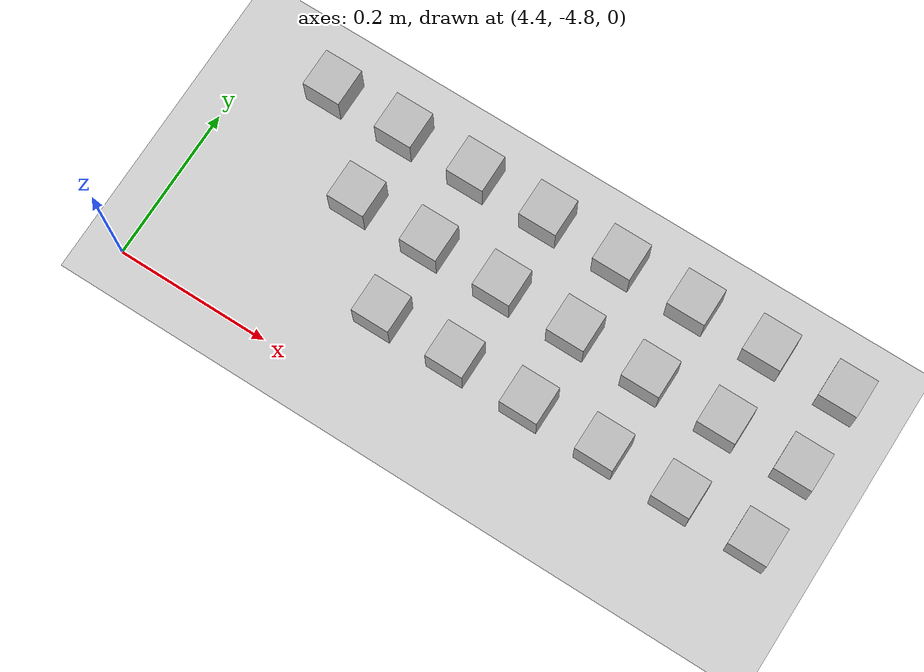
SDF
<sdf version="1.6">
 <world name="default">
  <model name="ground_plane">
   <static>1</static>
   <link name="link">
    <collision name="collision">
     <geometry><plane><normal>0 0 1</normal><size>100 100</size></plane></geometry>
     <surface><friction><ode><mu>100</mu><mu2>50</mu2></ode></friction></surface>
    </collision>
    <visual name="visual">
     <cast_shadows>0</cast_shadows>
     <geometry><plane><normal>0 0 1</normal><size>100 100</size></plane></geometry>
     <material>
      <script><uri>file://media/materials/scripts/gazebo.material</uri><name>Gazebo/Grey</name></script>
     </material>
    </visual>
   </link>
  </model>
  <model name="at106">
   <static>0</static>
   <link name="link">
    <inertial>
     <mass>0.01</mass>
     <inertia><ixx>4e-05</ixx><ixy>0</ixy><ixz>0</ixz><iyy>4e-05</iyy><iyz>0</iyz><izz>4e-05</izz></inertia>
    </inertial>
    <visual name="visual">
     <geometry><box><size>0.05 0.05 0.05</size></box></geometry>
     <material>
      <script>
       <uri>model://at0/materials/scripts</uri>
       <uri>model://at0/materials/textures</uri>
       <name>at0/Diffuse</name>
      </script>
     </material>
    </visual>
    <collision name="collision">
     <geometry><box><size>0.05 0.05 0.05</size></box></geometry>
     <surface><friction><ode><mu>0.8</mu><mu2>0.7</mu2></ode></friction></surface>
    </collision>
   </link>
   <pose>4.7 -4.7 0.025 0 -0 0</pose>
  </model>
  <model name="at107">
   <static>0</static>
   <link name="link">
    <inertial>
     <mass>0.01</mass>
     <inertia><ixx>4e-05</ixx><ixy>0</ixy><ixz>0</ixz><iyy>4e-05</iyy><iyz>0</iyz><izz>4e-05</izz></inertia>
    </inertial>
    <visual name="visual">
     <geometry><box><size>0.05 0.05 0.05</size></box></geometry>
     <material>
      <script>
       <uri>model://at0/materials/scripts</uri>
       <uri>model://at0/materials/textures</uri>
       <name>at0/Diffuse</name>
      </script>
     </material>
    </visual>
    <collision name="collision">
     <geometry><box><size>0.05 0.05 0.05</size></box></geometry>
     <surface><friction><ode><mu>0.8</mu><mu2>0.7</mu2></ode></friction></surface>
    </collision>
   </link>
   <pose>4.8 -4.7 0.025 0 -0 0</pose>
  </model>
  <model name="at108">
   <static>0</static>
   <link name="link">
    <inertial>
     <mass>0.01</mass>
     <inertia><ixx>4e-05</ixx><ixy>0</ixy><ixz>0</ixz><iyy>4e-05</iyy><iyz>0</iyz><izz>4e-05</izz></inertia>
    </inertial>
    <visual name="visual">
     <geometry><box><size>0.05 0.05 0.05</size></box></geometry>
     <material>
      <script>
       <uri>model://at0/materials/scripts</uri>
       <uri>model://at0/materials/textures</uri>
       <name>at0/Diffuse</name>
      </script>
     </material>
    </visual>
    <collision name="collision">
     <geometry><box><size>0.05 0.05 0.05</size></box></geometry>
     <surface><friction><ode><mu>0.8</mu><mu2>0.7</mu2></ode></friction></surface>
    </collision>
   </link>
   <pose>4.9 -4.7 0.025 0 -0 0</pose>
  </model>
  <model name="at109">
   <static>0</static>
   <link name="link">
    <inertial>
     <mass>0.01</mass>
     <inertia><ixx>4e-05</ixx><ixy>0</ixy><ixz>0</ixz><iyy>4e-05</iyy><iyz>0</iyz><izz>4e-05</izz></inertia>
    </inertial>
    <visual name="visual">
     <geometry><box><size>0.05 0.05 0.05</size></box></geometry>
     <material>
      <script>
       <uri>model://at0/materials/scripts</uri>
       <uri>model://at0/materials/textures</uri>
       <name>at0/Diffuse</name>
      </script>
     </material>
    </visual>
    <collision name="collision">
     <geometry><box><size>0.05 0.05 0.05</size></box></geometry>
     <surface><friction><ode><mu>0.8</mu><mu2>0.7</mu2></ode></friction></surface>
    </collision>
   </link>
   <pose>5.0 -4.7 0.025 0 -0 0</pose>
  </model>
  <model name="at110">
   <static>0</static>
   <link name="link">
    <inertial>
     <mass>0.01</mass>
     <inertia><ixx>4e-05</ixx><ixy>0</ixy><ixz>0</ixz><iyy>4e-05</iyy><iyz>0</iyz><izz>4e-05</izz></inertia>
    </inertial>
    <visual name="visual">
     <geometry><box><size>0.05 0.05 0.05</size></box></geometry>
     <material>
      <script>
       <uri>model://at0/materials/scripts</uri>
       <uri>model://at0/materials/textures</uri>
       <name>at0/Diffuse</name>
      </script>
     </material>
    </visual>
    <collision name="collision">
     <geometry><box><size>0.05 0.05 0.05</size></box></geometry>
     <surface><friction><ode><mu>0.8</mu><mu2>0.7</mu2></ode></friction></surface>
    </collision>
   </link>
   <pose>5.1 -4.7 0.025 0 -0 0</pose>
  </model>
  <model name="at111">
   <static>0</static>
   <link name="link">
    <inertial>
     <mass>0.01</mass>
     <inertia><ixx>4e-05</ixx><ixy>0</ixy><ixz>0</ixz><iyy>4e-05</iyy><iyz>0</iyz><izz>4e-05</izz></inertia>
    </inertial>
    <visual name="visual">
     <geometry><box><size>0.05 0.05 0.05</size></box></geometry>
     <material>
      <script>
       <uri>model://at0/materials/scripts</uri>
       <uri>model://at0/materials/textures</uri>
       <name>at0/Diffuse</name>
      </script>
     </material>
    </visual>
    <collision name="collision">
     <geometry><box><size>0.05 0.05 0.05</size></box></geometry>
     <surface><friction><ode><mu>0.8</mu><mu2>0.7</mu2></ode></friction></surface>
    </collision>
   </link>
   <pose>5.2 -4.7 0.025 0 -0 0</pose>
  </model>
  <model name="at113">
   <static>0</static>
   <link name="link">
    <inertial>
     <mass>0.01</mass>
     <inertia><ixx>4e-05</ixx><ixy>0</ixy><ixz>0</ixz><iyy>4e-05</iyy><iyz>0</iyz><izz>4e-05</izz></inertia>
    </inertial>
    <visual name="visual">
     <geometry><box><size>0.05 0.05 0.05</size></box></geometry>
     <material>
      <script>
       <uri>model://at0/materials/scripts</uri>
       <uri>model://at0/materials/textures</uri>
       <name>at0/Diffuse</name>
      </script>
     </material>
    </visual>
    <collision name="collision">
     <geometry><box><size>0.05 0.05 0.05</size></box></geometry>
     <surface><friction><ode><mu>0.8</mu><mu2>0.7</mu2></ode></friction></surface>
    </collision>
   </link>
   <pose>4.6 -4.6 0.025 0 -0 0</pose>
  </model>
  <model name="at114">
   <static>0</static>
   <link name="link">
    <inertial>
     <mass>0.01</mass>
     <inertia><ixx>4e-05</ixx><ixy>0</ixy><ixz>0</ixz><iyy>4e-05</iyy><iyz>0</iyz><izz>4e-05</izz></inertia>
    </inertial>
    <visual name="visual">
     <geometry><box><size>0.05 0.05 0.05</size></box></geometry>
     <material>
      <script>
       <uri>model://at0/materials/scripts</uri>
       <uri>model://at0/materials/textures</uri>
       <name>at0/Diffuse</name>
      </script>
     </material>
    </visual>
    <collision name="collision">
     <geometry><box><size>0.05 0.05 0.05</size></box></geometry>
     <surface><friction><ode><mu>0.8</mu><mu2>0.7</mu2></ode></friction></surface>
    </collision>
   </link>
   <pose>4.7 -4.6 0.025 0 -0 0</pose>
  </model>
  <model name="at115">
   <static>0</static>
   <link name="link">
    <inertial>
     <mass>0.01</mass>
     <inertia><ixx>4e-05</ixx><ixy>0</ixy><ixz>0</ixz><iyy>4e-05</iyy><iyz>0</iyz><izz>4e-05</izz></inertia>
    </inertial>
    <visual name="visual">
     <geometry><box><size>0.05 0.05 0.05</size></box></geometry>
     <material>
      <script>
       <uri>model://at0/materials/scripts</uri>
       <uri>model://at0/materials/textures</uri>
       <name>at0/Diffuse</name>
      </script>
     </material>
    </visual>
    <collision name="collision">
     <geometry><box><size>0.05 0.05 0.05</size></box></geometry>
     <surface><friction><ode><mu>0.8</mu><mu2>0.7</mu2></ode></friction></surface>
    </collision>
   </link>
   <pose>4.8 -4.6 0.025 0 -0 0</pose>
  </model>
  <model name="at116">
   <static>0</static>
   <link name="link">
    <inertial>
     <mass>0.01</mass>
     <inertia><ixx>4e-05</ixx><ixy>0</ixy><ixz>0</ixz><iyy>4e-05</iyy><iyz>0</iyz><izz>4e-05</izz></inertia>
    </inertial>
    <visual name="visual">
     <geometry><box><size>0.05 0.05 0.05</size></box></geometry>
     <material>
      <script>
       <uri>model://at0/materials/scripts</uri>
       <uri>model://at0/materials/textures</uri>
       <name>at0/Diffuse</name>
      </script>
     </material>
    </visual>
    <collision name="collision">
     <geometry><box><size>0.05 0.05 0.05</size></box></geometry>
     <surface><friction><ode><mu>0.8</mu><mu2>0.7</mu2></ode></friction></surface>
    </collision>
   </link>
   <pose>4.9 -4.6 0.025 0 -0 0</pose>
  </model>
  <model name="at117">
   <static>0</static>
   <link name="link">
    <inertial>
     <mass>0.01</mass>
     <inertia><ixx>4e-05</ixx><ixy>0</ixy><ixz>0</ixz><iyy>4e-05</iyy><iyz>0</iyz><izz>4e-05</izz></inertia>
    </inertial>
    <visual name="visual">
     <geometry><box><size>0.05 0.05 0.05</size></box></geometry>
     <material>
      <script>
       <uri>model://at0/materials/scripts</uri>
       <uri>model://at0/materials/textures</uri>
       <name>at0/Diffuse</name>
      </script>
     </material>
    </visual>
    <collision name="collision">
     <geometry><box><size>0.05 0.05 0.05</size></box></geometry>
     <surface><friction><ode><mu>0.8</mu><mu2>0.7</mu2></ode></friction></surface>
    </collision>
   </link>
   <pose>5.0 -4.6 0.025 0 -0 0</pose>
  </model>
  <model name="at118">
   <static>0</static>
   <link name="link">
    <inertial>
     <mass>0.01</mass>
     <inertia><ixx>4e-05</ixx><ixy>0</ixy><ixz>0</ixz><iyy>4e-05</iyy><iyz>0</iyz><izz>4e-05</izz></inertia>
    </inertial>
    <visual name="visual">
     <geometry><box><size>0.05 0.05 0.05</size></box></geometry>
     <material>
      <script>
       <uri>model://at0/materials/scripts</uri>
       <uri>model://at0/materials/textures</uri>
       <name>at0/Diffuse</name>
      </script>
     </material>
    </visual>
    <collision name="collision">
     <geometry><box><size>0.05 0.05 0.05</size></box></geometry>
     <surface><friction><ode><mu>0.8</mu><mu2>0.7</mu2></ode></friction></surface>
    </collision>
   </link>
   <pose>5.1 -4.6 0.025 0 -0 0</pose>
  </model>
  <model name="at119">
   <static>0</static>
   <link name="link">
    <inertial>
     <mass>0.01</mass>
     <inertia><ixx>4e-05</ixx><ixy>0</ixy><ixz>0</ixz><iyy>4e-05</iyy><iyz>0</iyz><izz>4e-05</izz></inertia>
    </inertial>
    <visual name="visual">
     <geometry><box><size>0.05 0.05 0.05</size></box></geometry>
     <material>
      <script>
       <uri>model://at0/materials/scripts</uri>
       <uri>model://at0/materials/textures</uri>
       <name>at0/Diffuse</name>
      </script>
     </material>
    </visual>
    <collision name="collision">
     <geometry><box><size>0.05 0.05 0.05</size></box></geometry>
     <surface><friction><ode><mu>0.8</mu><mu2>0.7</mu2></ode></friction></surface>
    </collision>
   </link>
   <pose>5.2 -4.6 0.025 0 -0 0</pose>
  </model>
  <model name="at120">
   <static>0</static>
   <link name="link">
    <inertial>
     <mass>0.01</mass>
     <inertia><ixx>4e-05</ixx><ixy>0</ixy><ixz>0</ixz><iyy>4e-05</iyy><iyz>0</iyz><izz>4e-05</izz></inertia>
    </inertial>
    <visual name="visual">
     <geometry><box><size>0.05 0.05 0.05</size></box></geometry>
     <material>
      <script>
       <uri>model://at0/materials/scripts</uri>
       <uri>model://at0/materials/textures</uri>
       <name>at0/Diffuse</name>
      </script>
     </material>
    </visual>
    <collision name="collision">
     <geometry><box><size>0.05 0.05 0.05</size></box></geometry>
     <surface><friction><ode><mu>0.8</mu><mu2>0.7</mu2></ode></friction></surface>
    </collision>
   </link>
   <pose>4.5 -4.5 0.025 0 -0 0</pose>
  </model>
  <model name="at121">
   <static>0</static>
   <link name="link">
    <inertial>
     <mass>0.01</mass>
     <inertia><ixx>4e-05</ixx><ixy>0</ixy><ixz>0</ixz><iyy>4e-05</iyy><iyz>0</iyz><izz>4e-05</izz></inertia>
    </inertial>
    <visual name="visual">
     <geometry><box><size>0.05 0.05 0.05</size></box></geometry>
     <material>
      <script>
       <uri>model://at0/materials/scripts</uri>
       <uri>model://at0/materials/textures</uri>
       <name>at0/Diffuse</name>
      </script>
     </material>
    </visual>
    <collision name="collision">
     <geometry><box><size>0.05 0.05 0.05</size></box></geometry>
     <surface><friction><ode><mu>0.8</mu><mu2>0.7</mu2></ode></friction></surface>
    </collision>
   </link>
   <pose>4.6 -4.5 0.025 0 -0 0</pose>
  </model>
  <model name="at122">
   <static>0</static>
   <link name="link">
    <inertial>
     <mass>0.01</mass>
     <inertia><ixx>4e-05</ixx><ixy>0</ixy><ixz>0</ixz><iyy>4e-05</iyy><iyz>0</iyz><izz>4e-05</izz></inertia>
    </inertial>
    <visual name="visual">
     <geometry><box><size>0.05 0.05 0.05</size></box></geometry>
     <material>
      <script>
       <uri>model://at0/materials/scripts</uri>
       <uri>model://at0/materials/textures</uri>
       <name>at0/Diffuse</name>
      </script>
     </material>
    </visual>
    <collision name="collision">
     <geometry><box><size>0.05 0.05 0.05</size></box></geometry>
     <surface><friction><ode><mu>0.8</mu><mu2>0.7</mu2></ode></friction></surface>
    </collision>
   </link>
   <pose>4.7 -4.5 0.025 0 -0 0</pose>
  </model>
  <model name="at123">
   <static>0</static>
   <link name="link">
    <inertial>
     <mass>0.01</mass>
     <inertia><ixx>4e-05</ixx><ixy>0</ixy><ixz>0</ixz><iyy>4e-05</iyy><iyz>0</iyz><izz>4e-05</izz></inertia>
    </inertial>
    <visual name="visual">
     <geometry><box><size>0.05 0.05 0.05</size></box></geometry>
     <material>
      <script>
       <uri>model://at0/materials/scripts</uri>
       <uri>model://at0/materials/textures</uri>
       <name>at0/Diffuse</name>
      </script>
     </material>
    </visual>
    <collision name="collision">
     <geometry><box><size>0.05 0.05 0.05</size></box></geometry>
     <surface><friction><ode><mu>0.8</mu><mu2>0.7</mu2></ode></friction></surface>
    </collision>
   </link>
   <pose>4.8 -4.5 0.025 0 -0 0</pose>
  </model>
  <model name="at124">
   <static>0</static>
   <link name="link">
    <inertial>
     <mass>0.01</mass>
     <inertia><ixx>4e-05</ixx><ixy>0</ixy><ixz>0</ixz><iyy>4e-05</iyy><iyz>0</iyz><izz>4e-05</izz></inertia>
    </inertial>
    <visual name="visual">
     <geometry><box><size>0.05 0.05 0.05</size></box></geometry>
     <material>
      <script>
       <uri>model://at0/materials/scripts</uri>
       <uri>model://at0/materials/textures</uri>
       <name>at0/Diffuse</name>
      </script>
     </material>
    </visual>
    <collision name="collision">
     <geometry><box><size>0.05 0.05 0.05</size></box></geometry>
     <surface><friction><ode><mu>0.8</mu><mu2>0.7</mu2></ode></friction></surface>
    </collision>
   </link>
   <pose>4.9 -4.5 0.025 0 -0 0</pose>
  </model>
  <model name="at125">
   <static>0</static>
   <link name="link">
    <inertial>
     <mass>0.01</mass>
     <inertia><ixx>4e-05</ixx><ixy>0</ixy><ixz>0</ixz><iyy>4e-05</iyy><iyz>0</iyz><izz>4e-05</izz></inertia>
    </inertial>
    <visual name="visual">
     <geometry><box><size>0.05 0.05 0.05</size></box></geometry>
     <material>
      <script>
       <uri>model://at0/materials/scripts</uri>
       <uri>model://at0/materials/textures</uri>
       <name>at0/Diffuse</name>
      </script>
     </material>
    </visual>
    <collision name="collision">
     <geometry><box><size>0.05 0.05 0.05</size></box></geometry>
     <surface><friction><ode><mu>0.8</mu><mu2>0.7</mu2></ode></friction></surface>
    </collision>
   </link>
   <pose>5.0 -4.5 0.025 0 -0 0</pose>
  </model>
  <model name="at126">
   <static>0</static>
   <link name="link">
    <inertial>
     <mass>0.01</mass>
     <inertia><ixx>4e-05</ixx><ixy>0</ixy><ixz>0</ixz><iyy>4e-05</iyy><iyz>0</iyz><izz>4e-05</izz></inertia>
    </inertial>
    <visual name="visual">
     <geometry><box><size>0.05 0.05 0.05</size></box></geometry>
     <material>
      <script>
       <uri>model://at0/materials/scripts</uri>
       <uri>model://at0/materials/textures</uri>
       <name>at0/Diffuse</name>
      </script>
     </material>
    </visual>
    <collision name="collision">
     <geometry><box><size>0.05 0.05 0.05</size></box></geometry>
     <surface><friction><ode><mu>0.8</mu><mu2>0.7</mu2></ode></friction></surface>
    </collision>
   </link>
   <pose>5.1 -4.5 0.025 0 -0 0</pose>
  </model>
  <model name="at127">
   <static>0</static>
   <link name="link">
    <inertial>
     <mass>0.01</mass>
     <inertia><ixx>4e-05</ixx><ixy>0</ixy><ixz>0</ixz><iyy>4e-05</iyy><iyz>0</iyz><izz>4e-05</izz></inertia>
    </inertial>
    <visual name="visual">
     <geometry><box><size>0.05 0.05 0.05</size></box></geometry>
     <material>
      <script>
       <uri>model://at0/materials/scripts</uri>
       <uri>model://at0/materials/textures</uri>
       <name>at0/Diffuse</name>
      </script>
     </material>
    </visual>
    <collision name="collision">
     <geometry><box><size>0.05 0.05 0.05</size></box></geometry>
     <surface><friction><ode><mu>0.8</mu><mu2>0.7</mu2></ode></friction></surface>
    </collision>
   </link>
   <pose>5.2 -4.5 0.025 0 -0 0</pose>
  </model>
 </world>
</sdf>
